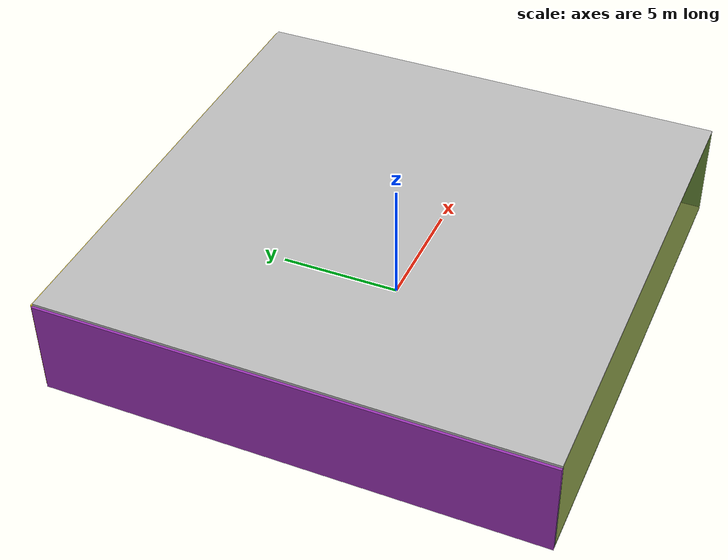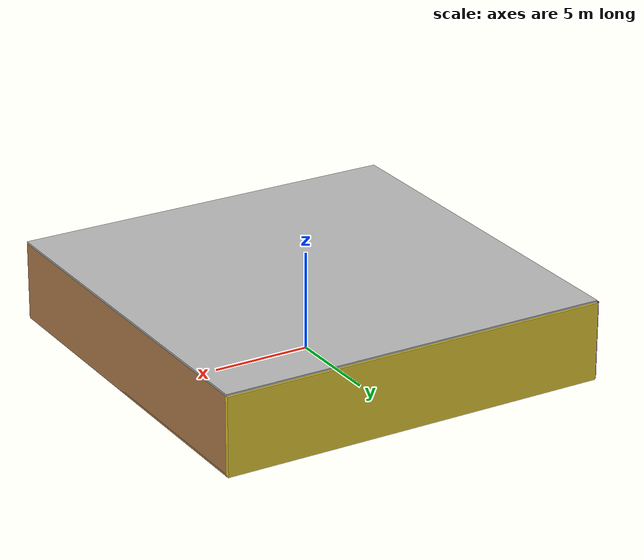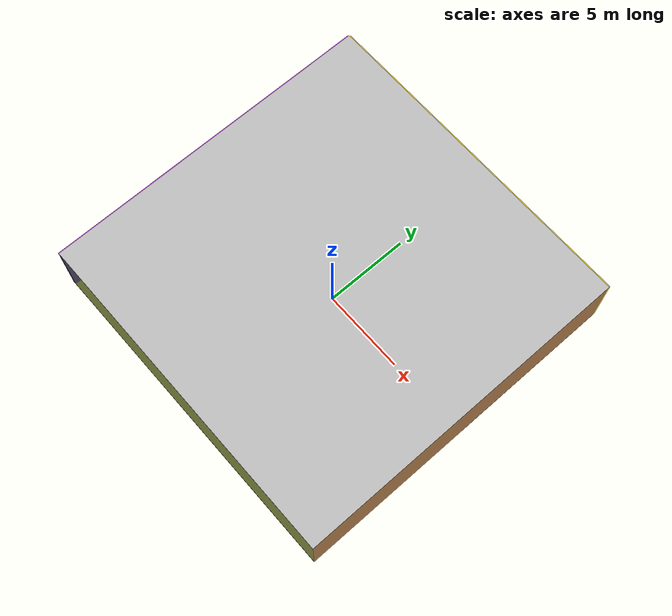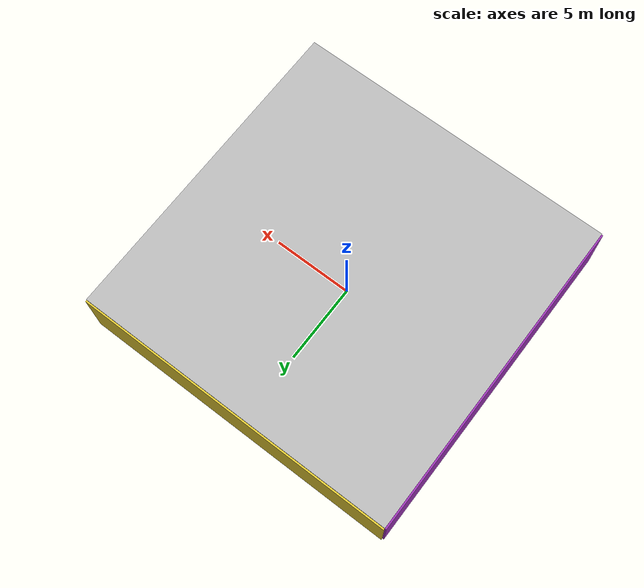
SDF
<sdf version="1.4">
 <world name="default">
  <physics type="ode">
   <max_step_size>0.001</max_step_size>
   <real_time_factor>1</real_time_factor>
   <real_time_update_rate>1000</real_time_update_rate>
   <gravity>0 0 -9.8</gravity>
  </physics>
  <scene><ambient>0.4 0.4 0.4 1</ambient><background>0.7 0.7 0.7 1</background><shadows>1</shadows></scene>
  <model name="Surrounding">
   <static>1</static>
   <link name="Ceiling">
    <collision name="Ceiling_Collision"><geometry><box><size>20 20 0.1</size></box></geometry></collision>
    <visual name="Ceiling_Visual">
     <geometry><box><size>20 20 0.1</size></box></geometry>
     <material>
      <script><uri>file://media/materials/scripts/gazebo.material</uri><name>Gazebo/LightOn</name></script>
     </material>
    </visual>
    <pose>0 0 4.05 0 0 0</pose>
   </link>
   <link name="Wall_South">
    <collision name="Wall_South_Collision">
     <geometry><box><size>20 0 4</size></box></geometry>
     <pose>0 0 2 0 -0 0</pose>
    </collision>
    <visual name="Wall_South_Visual">
     <pose>0 0 2 0 -0 0</pose>
     <geometry><box><size>20 0 4</size></box></geometry>
     <material>
      <script><uri>file://media/materials/scripts/gazebo.material</uri><name>Gazebo/GreenTransparent</name></script>
     </material>
    </visual>
    <velocity_decay><linear>0</linear><angular>0</angular></velocity_decay>
    <pose>0 -10 0 0 -0 0</pose>
   </link>
   <link name="Wall_East">
    <collision name="Wall_21_Collision">
     <geometry><box><size>20 0 4</size></box></geometry>
     <pose>0 0 2 0 -0 0</pose>
    </collision>
    <visual name="Wall_21_Visual">
     <pose>0 0 2 0 -0 0</pose>
     <geometry><box><size>20 0 4</size></box></geometry>
     <material>
      <script><uri>file://media/materials/scripts/gazebo.material</uri><name>Gazebo/WoodPallet</name></script>
     </material>
    </visual>
    <velocity_decay><linear>0</linear><angular>0</angular></velocity_decay>
    <pose>10 0 0 0 -0 1.5708</pose>
   </link>
   <link name="Wall_North">
    <collision name="Wall_22_Collision">
     <geometry><box><size>20 0.2 4</size></box></geometry>
     <pose>0 0 2 0 -0 0</pose>
    </collision>
    <visual name="Wall_22_Visual">
     <pose>0 0 2 0 -0 0</pose>
     <geometry><box><size>20 0.2 4</size></box></geometry>
     <material>
      <script><uri>file://media/materials/scripts/gazebo.material</uri><name>Gazebo/ZincYellow</name></script>
     </material>
    </visual>
    <velocity_decay><linear>0</linear><angular>0</angular></velocity_decay>
    <pose>0 10 0 0 -0 0</pose>
   </link>
   <link name="Wall_West">
    <collision name="Wall_23_Collision">
     <geometry><box><size>20 0.2 4</size></box></geometry>
     <pose>0 0 2 0 -0 0</pose>
    </collision>
    <visual name="Wall_23_Visual">
     <pose>0 0 2 0 -0 0</pose>
     <geometry><box><size>20 0.2 4</size></box></geometry>
     <material>
      <script><uri>file://media/materials/scripts/gazebo.material</uri><name>Gazebo/Purple</name></script>
     </material>
    </visual>
    <velocity_decay><linear>0</linear><angular>0</angular></velocity_decay>
    <pose>-10 0 0 0 0 -1.5708</pose>
   </link>
   <link name="Ground_link">
    <collision name="collision">
     <pose>0 0 .05 0 -0 0</pose>
     <geometry><box><size>20 20 0.1</size></box></geometry>
    </collision>
    <visual name="visual">
     <pose>0 0 .05 0 -0 0</pose>
     <geometry><box><size>20 20 0.1</size></box></geometry>
     <material>
      <script><uri>file://media/materials/scripts/gazebo.material</uri><name>Gazebo/WoodPallet</name></script>
     </material>
    </visual>
   </link>
   <static>1</static>
  </model>
  <spherical_coordinates>
   <surface_model>EARTH_WGS84</surface_model>
   <latitude_deg>0</latitude_deg>
   <longitude_deg>0</longitude_deg>
   <elevation>0</elevation>
   <heading_deg>0</heading_deg>
  </spherical_coordinates>
  <light name="lightball_0" type="diffuse">
   <diffuse>0.8 0.8 0.8 1</diffuse>
   <specular>0.2 0.2 0.2 1</specular>
   <attenuation>
    <range>100</range>
    <constant>0.7</constant>
    <linear>0.01</linear>
    <quadratic>0.001</quadratic>
   </attenuation>
   <direction>-0.5 0.1 -0.9</direction>
   <pose>2.08123781461 -5.1042394361 2.77621229947 0 0 0</pose>
  </light>
  <light name="lightball_1" type="diffuse">
   <diffuse>0.8 0.8 0.8 1</diffuse>
   <specular>0.2 0.2 0.2 1</specular>
   <attenuation>
    <range>100</range>
    <constant>0.7</constant>
    <linear>0.01</linear>
    <quadratic>0.001</quadratic>
   </attenuation>
   <direction>-0.5 0.1 -0.9</direction>
   <pose>9.5604686109 7.1479369061 1.40184776159 0 0 0</pose>
  </light>
  <light name="lightball_2" type="diffuse">
   <diffuse>0.8 0.8 0.8 1</diffuse>
   <specular>0.2 0.2 0.2 1</specular>
   <attenuation>
    <range>100</range>
    <constant>0.7</constant>
    <linear>0.01</linear>
    <quadratic>0.001</quadratic>
   </attenuation>
   <direction>-0.5 0.1 -0.9</direction>
   <pose>-3.90446912055 -0.0201831659604 1.84421410364 0 0 0</pose>
  </light>
  <light name="lightball_3" type="diffuse">
   <diffuse>0.8 0.8 0.8 1</diffuse>
   <specular>0.2 0.2 0.2 1</specular>
   <attenuation>
    <range>100</range>
    <constant>0.7</constant>
    <linear>0.01</linear>
    <quadratic>0.001</quadratic>
   </attenuation>
   <direction>-0.5 0.1 -0.9</direction>
   <pose>-2.22759952858 3.87317510079 1.37251179684 0 0 0</pose>
  </light>
  <light name="lightball_4" type="diffuse">
   <diffuse>0.8 0.8 0.8 1</diffuse>
   <specular>0.2 0.2 0.2 1</specular>
   <attenuation>
    <range>100</range>
    <constant>0.7</constant>
    <linear>0.01</linear>
    <quadratic>0.001</quadratic>
   </attenuation>
   <direction>-0.5 0.1 -0.9</direction>
   <pose>-3.14700351831 8.62531794749 0.815550101717 0 0 0</pose>
  </light>
  <light name="lightball_5" type="diffuse">
   <diffuse>0.8 0.8 0.8 1</diffuse>
   <specular>0.2 0.2 0.2 1</specular>
   <attenuation>
    <range>100</range>
    <constant>0.7</constant>
    <linear>0.01</linear>
    <quadratic>0.001</quadratic>
   </attenuation>
   <direction>-0.5 0.1 -0.9</direction>
   <pose>1.20472764093 7.78039231516 0.858064473286 0 0 0</pose>
  </light>
  <light name="lightball_6" type="diffuse">
   <diffuse>0.8 0.8 0.8 1</diffuse>
   <specular>0.2 0.2 0.2 1</specular>
   <attenuation>
    <range>100</range>
    <constant>0.7</constant>
    <linear>0.01</linear>
    <quadratic>0.001</quadratic>
   </attenuation>
   <direction>-0.5 0.1 -0.9</direction>
   <pose>-7.50813261336 -7.97245673233 2.31081787312 0 0 0</pose>
  </light>
  <light name="lightball_7" type="diffuse">
   <diffuse>0.8 0.8 0.8 1</diffuse>
   <specular>0.2 0.2 0.2 1</specular>
   <attenuation>
    <range>100</range>
    <constant>0.7</constant>
    <linear>0.01</linear>
    <quadratic>0.001</quadratic>
   </attenuation>
   <direction>-0.5 0.1 -0.9</direction>
   <pose>0.35558604431 6.5343942627 3.64809012076 0 0 0</pose>
  </light>
  <light name="lightball_8" type="diffuse">
   <diffuse>0.8 0.8 0.8 1</diffuse>
   <specular>0.2 0.2 0.2 1</specular>
   <attenuation>
    <range>100</range>
    <constant>0.7</constant>
    <linear>0.01</linear>
    <quadratic>0.001</quadratic>
   </attenuation>
   <direction>-0.5 0.1 -0.9</direction>
   <pose>2.19505048274 -4.24033426368 1.5002494631 0 0 0</pose>
  </light>
  <light name="lightball_9" type="diffuse">
   <diffuse>0.8 0.8 0.8 1</diffuse>
   <specular>0.2 0.2 0.2 1</specular>
   <attenuation>
    <range>100</range>
    <constant>0.7</constant>
    <linear>0.01</linear>
    <quadratic>0.001</quadratic>
   </attenuation>
   <direction>-0.5 0.1 -0.9</direction>
   <pose>1.37169844293 -6.57222036819 1.75526991024 0 0 0</pose>
  </light>
  <light name="lightball_10" type="diffuse">
   <diffuse>0.8 0.8 0.8 1</diffuse>
   <specular>0.2 0.2 0.2 1</specular>
   <attenuation>
    <range>100</range>
    <constant>0.7</constant>
    <linear>0.01</linear>
    <quadratic>0.001</quadratic>
   </attenuation>
   <direction>-0.5 0.1 -0.9</direction>
   <pose>-5.57377619164 8.00708140415 2.98844905103 0 0 0</pose>
  </light>
  <light name="lightball_11" type="diffuse">
   <diffuse>0.8 0.8 0.8 1</diffuse>
   <specular>0.2 0.2 0.2 1</specular>
   <attenuation>
    <range>100</range>
    <constant>0.7</constant>
    <linear>0.01</linear>
    <quadratic>0.001</quadratic>
   </attenuation>
   <direction>-0.5 0.1 -0.9</direction>
   <pose>-8.30284236163 -7.02608598598 0.670289570555 0 0 0</pose>
  </light>
  <include><uri>model://cabinet</uri><pose>-4.32735479579 3.50305609675 0 0 0 2.18241088353</pose></include>
  <include>
   <uri>model://textured_shapes</uri>
   <pose>-0.86594982788 -2.58601723863 0 0 0 1.58597310971</pose>
  </include>
  <include>
   <uri>model://textured_shapes</uri>
   <pose>1.04119802855 1.08042473843 0 0 0 0.868727000862</pose>
  </include>
  <include><uri>model://cabinet</uri><pose>4.50554658053 -5.5023095992 0 0 0 1.5750400143</pose></include>
 </world>
</sdf>

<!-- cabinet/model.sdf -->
<sdf version="1.5">
  <model name="cabinet">
    <static>true</static>
    <link name="cabinet_bottom_plate">
      <inertial>
        <pose>0 0 -1 0 0 0</pose>
        <inertia>
          <ixx>2.050000</ixx>
          <ixy>0</ixy>
          <ixz>0</ixz>
          <iyy>2.050000</iyy>
          <iyz>0</iyz>
          <izz>2.050000</izz>
        </inertia>
        <mass>25.000000</mass>
      </inertial>
      <collision name="cabinet_bottom_plate_geom">
        <pose>0 0 0.010000 0 0 0</pose>
        <geometry>
          <box>
            <size>0.450000 0.450000 0.020000</size>
          </box>
        </geometry>
      </collision>
      <visual name="cabinet_bottom_plate_geom_visual">
        <pose>0 0 0.010000 0 0 0</pose>
        <geometry>
          <box>
            <size>0.450000 0.450000 0.020000</size>
          </box>
        </geometry>
        <material>
          <script>
            <uri>model://media/materials/scripts/gazebo.material</uri>
            <name>Gazebo/Wood</name>
          </script>
        </material>
      </visual>
      <collision name="cabinet_bottom_plate_geom_cabinet_back_plate">
        <pose>0.235000 0 0.510000 0 0 0</pose>
        <geometry>
          <box>
            <size>0.020000 0.450000 1.020000</size>
          </box>
        </geometry>
      </collision>
      <visual name="cabinet_bottom_plate_geom_cabinet_back_plate_visual">
        <pose>0.235000 0 0.510000 0 0 0</pose>
        <geometry>
          <box>
            <size>0.020000 0.450000 1.020000</size>
          </box>
        </geometry>
        <material>
          <script>
            <uri>model://media/materials/scripts/gazebo.material</uri>
            <name>Gazebo/Wood</name>
          </script>
        </material>
      </visual>
      <collision name="cabinet_bottom_plate_geom_cabinet_left_plate">
        <pose>0 0.235000 0.510000 0 0 0</pose>
        <geometry>
          <box>
            <size>0.450000 0.020000 1.020000</size>
          </box>
        </geometry>
      </collision>
      <visual name="cabinet_bottom_plate_geom_cabinet_left_plate_visual">
        <pose>0 0.235000 0.510000 0 0 0</pose>
        <geometry>
          <box>
            <size>0.450000 0.020000 1.020000</size>
          </box>
        </geometry>
        <material>
          <script>
            <uri>model://media/materials/scripts/gazebo.material</uri>
            <name>Gazebo/Wood</name>
          </script>
        </material>
      </visual>
      <collision name="cabinet_bottom_plate_geom_cabinet_middle_plate">
        <pose>0 0 0.510000 0 0 0</pose>
        <geometry>
          <box>
            <size>0.450000 0.450000 0.020000</size>
          </box>
        </geometry>
      </collision>
      <visual name="cabinet_bottom_plate_geom_cabinet_middle_plate_visual">
        <pose>0 0 0.510000 0 0 0</pose>
        <geometry>
          <box>
            <size>0.450000 0.450000 0.020000</size>
          </box>
        </geometry>
        <material>
          <script>
            <uri>model://media/materials/scripts/gazebo.material</uri>
            <name>Gazebo/Wood</name>
          </script>
        </material>
      </visual>
      <collision name="cabinet_bottom_plate_geom_cabinet_right_plate">
        <pose>0 -0.235000 0.510000 0 0 0</pose>
        <geometry>
          <box>
            <size>0.450000 0.020000 1.020000</size>
          </box>
        </geometry>
      </collision>
      <visual name="cabinet_bottom_plate_geom_cabinet_right_plate_visual">
        <pose>0 -0.235000 0.510000 0 0 0</pose>
        <geometry>
          <box>
            <size>0.450000 0.020000 1.020000</size>
          </box>
        </geometry>
        <material>
          <script>
            <uri>model://media/materials/scripts/gazebo.material</uri>
            <name>Gazebo/Wood</name>
          </script>
        </material>
      </visual>
      <collision name="cabinet_bottom_plate_geom_cabinet_top_plate">
        <pose>0 0 1.010000 0 0 0</pose>
        <geometry>
          <box>
            <size>0.450000 0.450000 0.020000</size>
          </box>
        </geometry>
      </collision>
      <visual name="cabinet_bottom_plate_geom_cabinet_top_plate_visual">
        <pose>0 0 1.010000 0 0 0</pose>
        <geometry>
          <box>
            <size>0.450000 0.450000 0.020000</size>
          </box>
        </geometry>
        <material>
          <script>
            <uri>model://media/materials/scripts/gazebo.material</uri>
            <name>Gazebo/Wood</name>
          </script>
        </material>
      </visual>
    </link>
  </model>
</sdf>

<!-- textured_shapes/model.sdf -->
<sdf version="1.6">
  <model name="textured_shapes">
    <pose>0 0 0.5 0 0 0</pose>
    <link name="box">
      <pose>0 -1.5 0 0 0 0</pose>
      <collision name="collision">
        <geometry>
          <box>
            <size>1 1 1</size>
          </box>
        </geometry>
      </collision>
      <visual name="visual">
        <geometry>
          <box>
            <size>1 1 1</size>
          </box>
        </geometry>
        <material>
          <script>
            <uri>model://../model_source/models/textured_shapes/materials/scripts</uri>
            <uri>model://../model_source/models/textured_shapes/materials/textures</uri>
            <name>TexturedShape/Squares</name>
          </script>
        </material>
      </visual>
    </link>
    <link name="sphere">
      <collision name="collision">
        <geometry>
          <sphere>
            <radius>0.5</radius>
          </sphere>
        </geometry>
      </collision>
      <visual name="visual">
        <geometry>
          <sphere>
            <radius>0.5</radius>
          </sphere>
        </geometry>
        <material>
          <script>
            <uri>model://../model_source/models/textured_shapes/materials/scripts</uri>
            <uri>model://../model_source/models/textured_shapes/materials/textures</uri>
            <name>TexturedShape/Squares</name>
          </script>
        </material>
      </visual>
    </link>
    <link name="cylinder">
      <pose>0 1.5 0 0 0 0</pose>
      <collision name="collision">
        <geometry>
          <cylinder>
            <radius>0.5</radius>
            <length>1</length>
          </cylinder>
        </geometry>
      </collision>
      <visual name="visual">
        <geometry>
          <cylinder>
            <radius>0.5</radius>
            <length>1</length>
          </cylinder>
        </geometry>
        <material>
          <script>
            <uri>model://../model_source/models/textured_shapes/materials/scripts</uri>
            <uri>model://../model_source/models/textured_shapes/materials/textures</uri>
            <name>TexturedShape/Squares</name>
          </script>
        </material>
      </visual>
    </link>
  </model>
</sdf>
